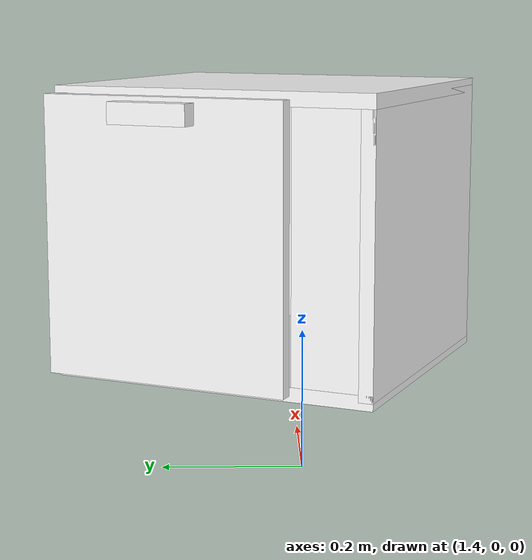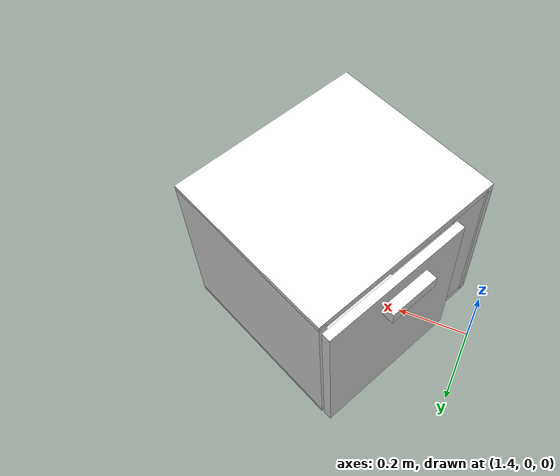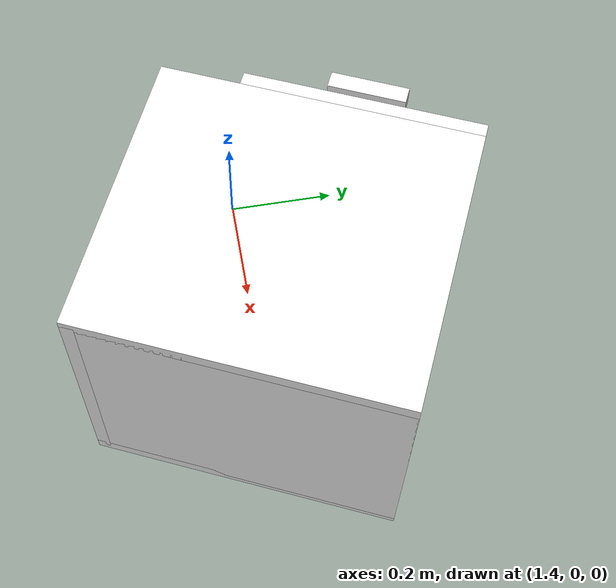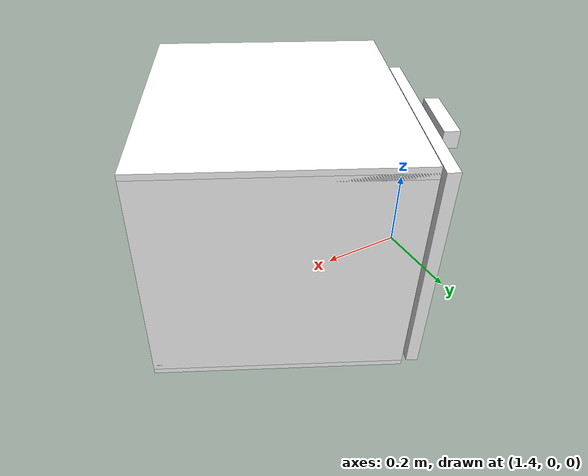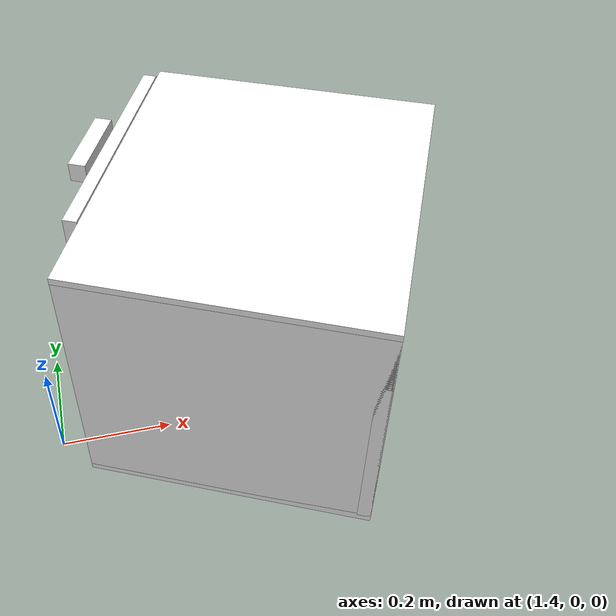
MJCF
<mujoco model="cabinet">
    <compiler angle="radian" eulerseq='zxy' />
    <option gravity = "0 0 0" />
    <option>
        <flag contact = "disable"/>
    </option>
    <statistic	extent="1.0" center="0.0 0.0 0.0"/>
    <visual>
        <map fogstart="3" fogend="5" force="0.1" znear=" 0.100000 " zfar=" 12.000000 "/>
    </visual>
    <size njmax="500" nconmax="100" />
    <actuator>
        <velocity joint="bottom_left_hinge" name="viva_revolution" kv='10'></velocity>
    </actuator>
    <asset>
        <texture builtin="flat" name="tabletex" height="32" width="32" rgb1="1 1 1" type="cube"></texture>
        <texture builtin="flat" name="objtex" height="32" width="32" rgb1="1 1 1" type="cube"></texture>
        <texture builtin="flat" name="handletex" height="32" width="32" rgb1="1 1 1" type="cube"></texture>
        <texture builtin="flat" name="wallpaper" height="32" width="32" rgb1="1 1 1" type="cube"></texture>
        <texture builtin="flat" name="kp" height="32" width="32" rgb1="1 1 1" type="cube"></texture>
        <material name="geomTable" shininess="0.03" specular="0.75" texture="tabletex"></material>
        <material name="geomObj" shininess="0.03" specular="0.75" texture="objtex"></material>
        <material name="geomHandle" shininess="0.03" specular="0.75" texture="handletex"></material>
        <material name="bg" shininess="0.03" specular="0.75" texture="wallpaper"></material>
        <material name="geomKeypad" shininess="0.03" specular="0.75" texture="kp"></material>
    </asset>
    <worldbody>
        <body name="cabinet_bottom" pos= " 1.784908 0.033347 0.076245 "  quat= " 0.215876 0.000000 0.000000 0.976421" >
            <inertial pos="0 0 0" mass="1" diaginertia="1 1 1" />
            <geom size= " 0.242628 0.266441 0.011463 "  type="box" material="geomObj" name="b"/>
            <body name="cabinet_left" pos= " 0.000000 -0.254978 0.221165 " >
                <inertial pos="0 0 0" mass="1" diaginertia="1 1 1" />
                <geom size= " 0.242628 0.011463 0.221165 "  type="box" material="geomObj" name="c" />
            </body>
            <body name="cabinet_right" pos= " 0.000000 0.254978 0.221165 " >
                <inertial pos="0 0 0" mass="1" diaginertia="1 1 1" />
                <geom size= " 0.242628 0.011463 0.221165 "  type="box" material="geomObj" name="d" />
            </body>
            <body name="cabinet_top" pos= " 0.000000 0.000000 0.442331 " >
                <inertial pos="0 0 0" mass="1" diaginertia="1 1 1" />
                <geom size= " 0.242628 0.266441 0.011463 "  type="box" material="geomObj" name="e"/>
            </body>
            <body name="cabinet_back" pos= " -0.231165 0.000000 0.221165 "  >
                <inertial pos="0 0 0" mass="1" diaginertia="1 1 1" />
                <geom size= " 0.011463 0.266441 0.221165 "  type="box" material="geomObj" name="f" />
            </body>
            <body name="cabinet_keypad" pos= " 0.011463 0.200472 0.221165 " >
                <inertial pos="0 0 0" mass="1" diaginertia="1 1 1" />
                <geom size= " 0.231165 0.064970 0.209702 "  type="box" material="geomKeypad" name="keypizzlemynizzle" />
            </body>
            <body name="cabinet_left_hinge" pos= " 0.242628 -0.064970 0.000000 " >
                <inertial pos= " 0.020000 0.000000 0.221165 "  mass="1" diaginertia="1 1 1" />
                <joint name="bottom_left_hinge" type="hinge" pos="0 0 0" axis="0 1 0" limited="true" range= "0 2.3"  />
                <geom size= " 0.011463 0.201472 0.221165 "  pos= " 0.020000 0.000000 0.221165 "  type="box" material="geomObj" name="g"/>
                <body name="handle_link" pos= " 0.060657 0.000000 0.419404 " >
                    <inertial pos="0 0 0" mass="1" diaginertia="1 1 1" />
                    <geom size= " 0.014490 0.064970 0.016832 "  type="box" material="geomHandle" name="h"/>
                </body>
            </body>
        </body>
        <body name="external_camera_body_0" pos="0.0 0 0.00">
            <camera euler="-1.57 1.57 0.0" fovy=" 54.280851 " name="external_camera_0" pos="0.0 0 0"></camera>
            <inertial pos= " 0.00 0.0 0.000000 " mass="1" diaginertia="1 1 1" />
            <joint name="cam_j" pos="0.0 0 0" axis = "1 0 0" type="free" />
        </body>
    </worldbody>
</mujoco>
